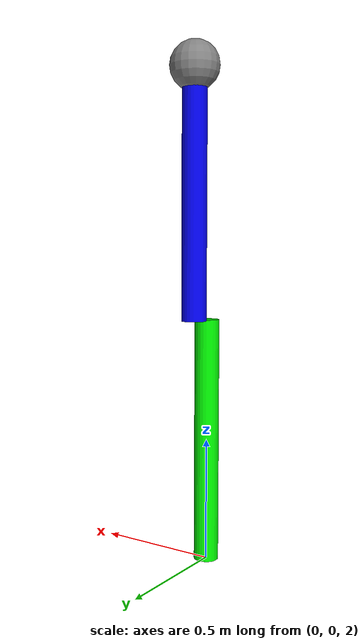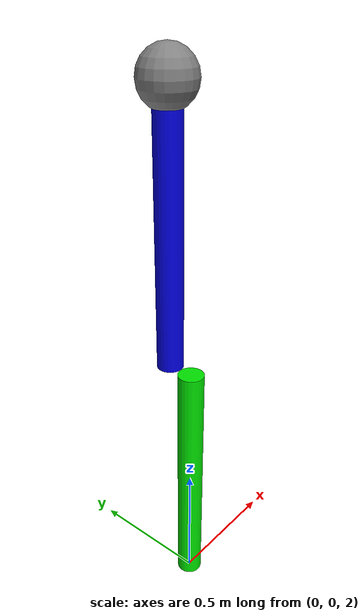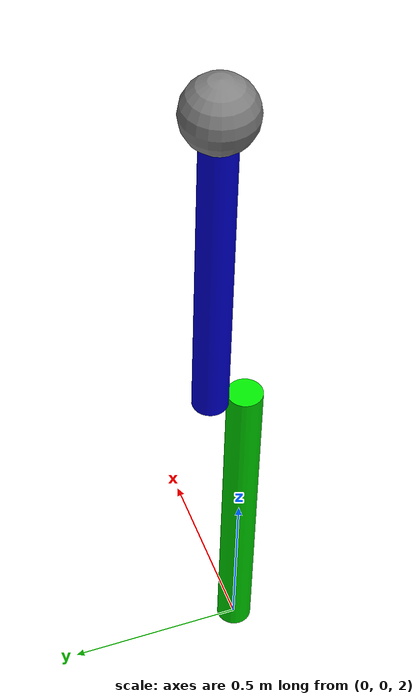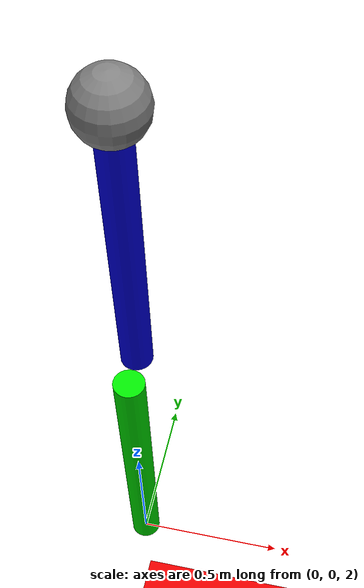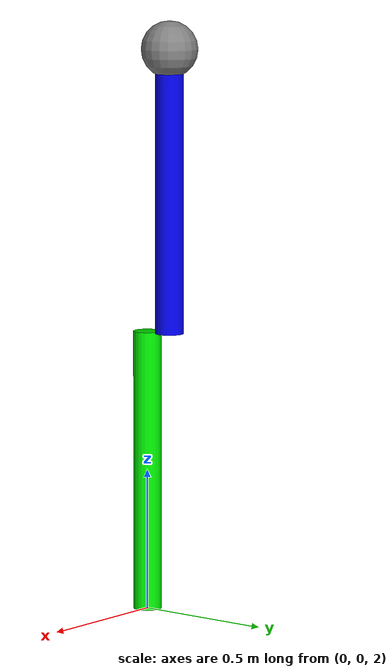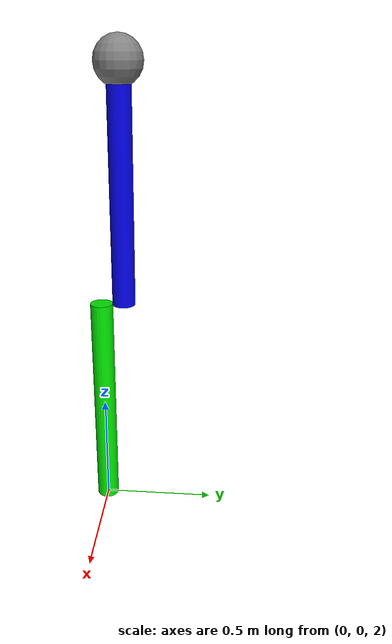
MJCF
<mujoco>
	<option timestep="0.0001" integrator="RK4" >
		<flag sensornoise="enable" energy="enable" contact="disable" />
	</option>
	<worldbody>
        <light diffuse=".5 .5 .5" pos="0 0 3" dir="0 0 -1"/>
		<geom type="plane" size="1 1 0.1" rgba=".9 0 0 1"/>
		<body pos="0 0 2.5" euler="0 0 0">
			<joint name="pin" type="hinge" axis = "0 -1 0" pos="0 0 -0.5"/>
			<geom type="cylinder" size="0.05 0.5" rgba="0 .9 0 1" mass="1"/>
			<body pos="0 0.1 1" euler="0 0 0">
				<joint name="pin2" type="hinge" axis = "0 -1 0" pos="0 0 -0.5"/>
				<geom type="cylinder" size="0.05 0.5" rgba="0 0 .9 1" mass="1"/>
				<site name="endeff" pos="0 0 0.5" size="0.1"/>
			</body>
		</body>
	</worldbody>
	 <actuator>
		<motor joint="pin" name="torque" gear="1" ctrllimited="true" ctrlrange="-50 50" />
		<position name="position_servo" joint="pin" kp="0" />
		<velocity name="velocity_servo" joint="pin" kv="0" />
	</actuator>
	<sensor>
		<jointpos joint="pin" noise="0.2"/>
		<jointvel joint="pin" noise="1" />
	</sensor>
		 <actuator>
		<motor joint="pin2" name="torque2" gear="1" ctrllimited="true" ctrlrange="-50 50" />
		<position name="position_servo2" joint="pin2" kp="0" />
		<velocity name="velocity_servo2" joint="pin2" kv="0" />
	</actuator>
	<sensor>
		<jointpos joint="pin2" noise="0.2"/>
		<jointvel joint="pin2" noise="1" />
	</sensor>
</mujoco>
